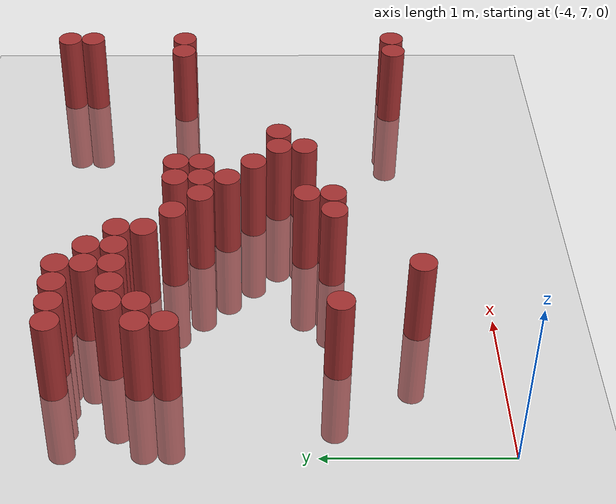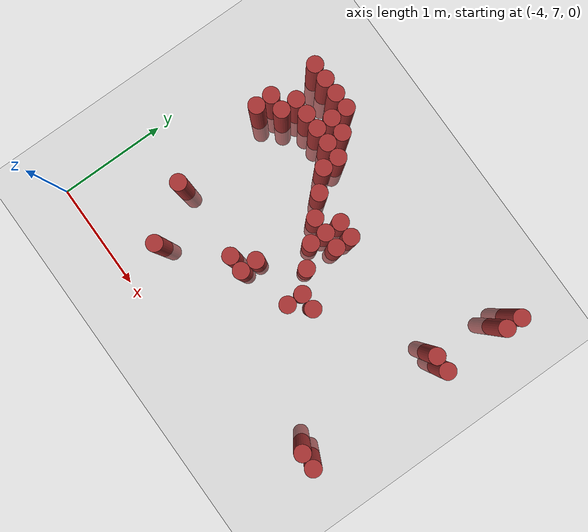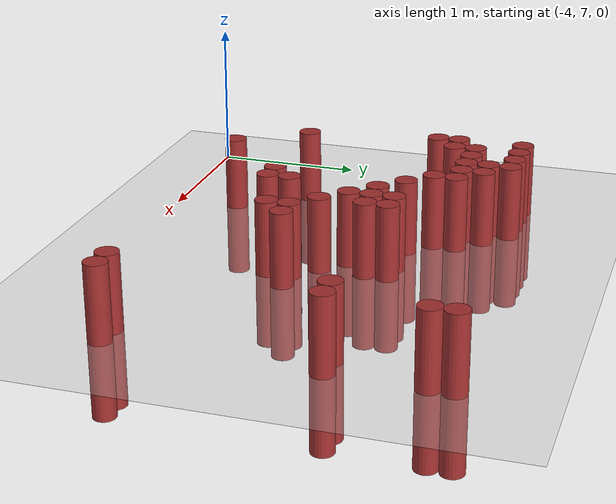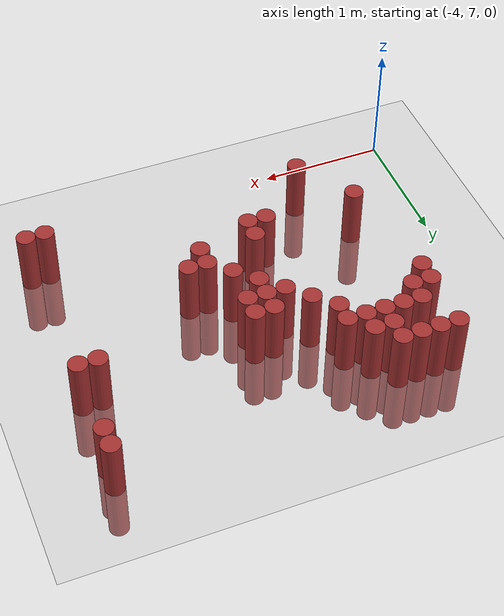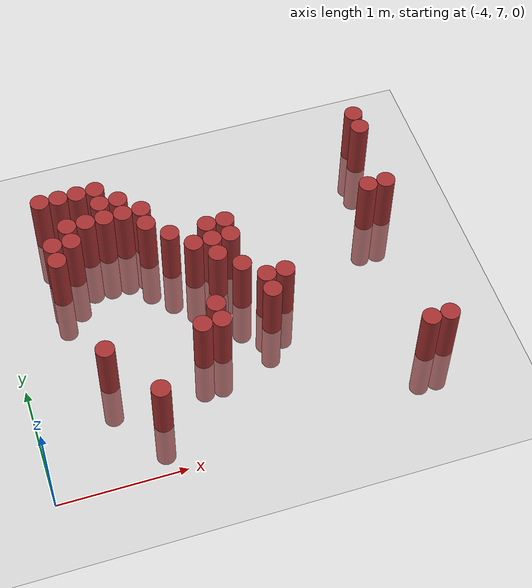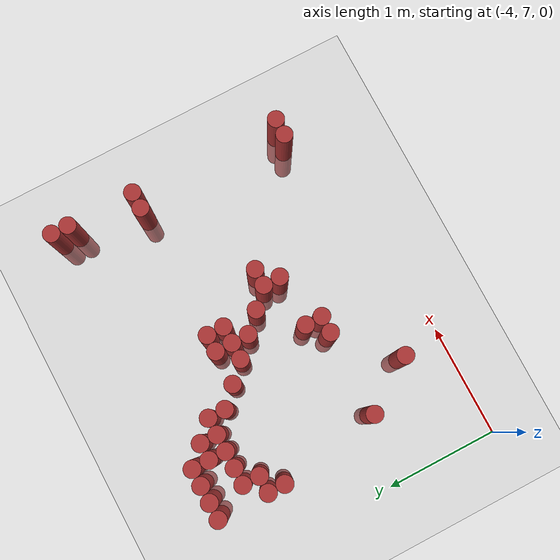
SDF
<sdf version="1.6">
 <world name="default">
  <model name="ground_plane">
   <static>1</static>
   <link name="link">
    <collision name="collision">
     <geometry><plane><normal>0 0 1</normal><size>100 100</size></plane></geometry>
     <surface><friction><ode><mu>100</mu><mu2>50</mu2></ode></friction></surface>
    </collision>
    <visual name="visual">
     <cast_shadows>0</cast_shadows>
     <geometry><plane><normal>0 0 1</normal><size>100 100</size></plane></geometry>
     <material>
      <script><uri>file://media/materials/scripts/gazebo.material</uri><name>Gazebo/Grey</name></script>
     </material>
    </visual>
   </link>
  </model>
  <model name="unit_cylinder_189">
   <static>1</static>
   <pose>-3.525000 8.775000 0.000000 0.000000 0.000000 0.000000</pose>
   <link name="link">
    <inertial>
     <mass>1</mass>
     <inertia><ixx>0.145833</ixx><ixy>0</ixy><ixz>0</ixz><iyy>0.145833</iyy><iyz>0</iyz><izz>0.125</izz></inertia>
    </inertial>
    <collision name="collision">
     <geometry><cylinder><radius>0.075000</radius><length>1</length></cylinder></geometry>
    </collision>
    <visual name="visual">
     <geometry><cylinder><radius>0.075000</radius><length>1</length></cylinder></geometry>
     <material>
      <ambient>0.648000 0.192000 0.192000 1</ambient>
      <diffuse>0.648000 0.192000 0.192000 1</diffuse>
     </material>
     <material>
      <script><name>Gazebo/Grey</name><uri>file://media/materials/scripts/gazebo.material</uri></script>
     </material>
    </visual>
    <sensor name="sensor_contact" type="contact"><contact><collision>collision</collision></contact></sensor>
   </link>
   <plugin filename="gz-sim-touchplugin-system" name="gz::sim::systems::TouchPlugin">
    <target>robot</target>
    <namespace>robot</namespace>
    <time>0.001</time>
    <enabled>true</enabled>
   </plugin>
  </model>
  <model name="unit_cylinder_190">
   <static>1</static>
   <pose>-3.525000 8.925000 0.000000 0.000000 0.000000 0.000000</pose>
   <link name="link">
    <inertial>
     <mass>1</mass>
     <inertia><ixx>0.145833</ixx><ixy>0</ixy><ixz>0</ixz><iyy>0.145833</iyy><iyz>0</iyz><izz>0.125</izz></inertia>
    </inertial>
    <collision name="collision">
     <geometry><cylinder><radius>0.075000</radius><length>1</length></cylinder></geometry>
    </collision>
    <visual name="visual">
     <geometry><cylinder><radius>0.075000</radius><length>1</length></cylinder></geometry>
     <material>
      <ambient>0.648000 0.192000 0.192000 1</ambient>
      <diffuse>0.648000 0.192000 0.192000 1</diffuse>
     </material>
     <material>
      <script><name>Gazebo/Grey</name><uri>file://media/materials/scripts/gazebo.material</uri></script>
     </material>
    </visual>
    <sensor name="sensor_contact" type="contact"><contact><collision>collision</collision></contact></sensor>
   </link>
   <plugin filename="gz-sim-touchplugin-system" name="gz::sim::systems::TouchPlugin">
    <target>robot</target>
    <namespace>robot</namespace>
    <time>0.001</time>
    <enabled>true</enabled>
   </plugin>
  </model>
  <model name="unit_cylinder_191">
   <static>1</static>
   <pose>-3.525000 9.375000 0.000000 0.000000 0.000000 0.000000</pose>
   <link name="link">
    <inertial>
     <mass>1</mass>
     <inertia><ixx>0.145833</ixx><ixy>0</ixy><ixz>0</ixz><iyy>0.145833</iyy><iyz>0</iyz><izz>0.125</izz></inertia>
    </inertial>
    <collision name="collision">
     <geometry><cylinder><radius>0.075000</radius><length>1</length></cylinder></geometry>
    </collision>
    <visual name="visual">
     <geometry><cylinder><radius>0.075000</radius><length>1</length></cylinder></geometry>
     <material>
      <ambient>0.648000 0.192000 0.192000 1</ambient>
      <diffuse>0.648000 0.192000 0.192000 1</diffuse>
     </material>
     <material>
      <script><name>Gazebo/Grey</name><uri>file://media/materials/scripts/gazebo.material</uri></script>
     </material>
    </visual>
    <sensor name="sensor_contact" type="contact"><contact><collision>collision</collision></contact></sensor>
   </link>
   <plugin filename="gz-sim-touchplugin-system" name="gz::sim::systems::TouchPlugin">
    <target>robot</target>
    <namespace>robot</namespace>
    <time>0.001</time>
    <enabled>true</enabled>
   </plugin>
  </model>
  <model name="unit_cylinder_198">
   <static>1</static>
   <pose>-3.375000 7.875000 0.000000 0.000000 0.000000 0.000000</pose>
   <link name="link">
    <inertial>
     <mass>1</mass>
     <inertia><ixx>0.145833</ixx><ixy>0</ixy><ixz>0</ixz><iyy>0.145833</iyy><iyz>0</iyz><izz>0.125</izz></inertia>
    </inertial>
    <collision name="collision">
     <geometry><cylinder><radius>0.075000</radius><length>1</length></cylinder></geometry>
    </collision>
    <visual name="visual">
     <geometry><cylinder><radius>0.075000</radius><length>1</length></cylinder></geometry>
     <material>
      <ambient>0.648000 0.192000 0.192000 1</ambient>
      <diffuse>0.648000 0.192000 0.192000 1</diffuse>
     </material>
     <material>
      <script><name>Gazebo/Grey</name><uri>file://media/materials/scripts/gazebo.material</uri></script>
     </material>
    </visual>
    <sensor name="sensor_contact" type="contact"><contact><collision>collision</collision></contact></sensor>
   </link>
   <plugin filename="gz-sim-touchplugin-system" name="gz::sim::systems::TouchPlugin">
    <target>robot</target>
    <namespace>robot</namespace>
    <time>0.001</time>
    <enabled>true</enabled>
   </plugin>
  </model>
  <model name="unit_cylinder_199">
   <static>1</static>
   <pose>-3.375000 8.925000 0.000000 0.000000 0.000000 0.000000</pose>
   <link name="link">
    <inertial>
     <mass>1</mass>
     <inertia><ixx>0.145833</ixx><ixy>0</ixy><ixz>0</ixz><iyy>0.145833</iyy><iyz>0</iyz><izz>0.125</izz></inertia>
    </inertial>
    <collision name="collision">
     <geometry><cylinder><radius>0.075000</radius><length>1</length></cylinder></geometry>
    </collision>
    <visual name="visual">
     <geometry><cylinder><radius>0.075000</radius><length>1</length></cylinder></geometry>
     <material>
      <ambient>0.648000 0.192000 0.192000 1</ambient>
      <diffuse>0.648000 0.192000 0.192000 1</diffuse>
     </material>
     <material>
      <script><name>Gazebo/Grey</name><uri>file://media/materials/scripts/gazebo.material</uri></script>
     </material>
    </visual>
    <sensor name="sensor_contact" type="contact"><contact><collision>collision</collision></contact></sensor>
   </link>
   <plugin filename="gz-sim-touchplugin-system" name="gz::sim::systems::TouchPlugin">
    <target>robot</target>
    <namespace>robot</namespace>
    <time>0.001</time>
    <enabled>true</enabled>
   </plugin>
  </model>
  <model name="unit_cylinder_200">
   <static>1</static>
   <pose>-3.375000 9.075000 0.000000 0.000000 0.000000 0.000000</pose>
   <link name="link">
    <inertial>
     <mass>1</mass>
     <inertia><ixx>0.145833</ixx><ixy>0</ixy><ixz>0</ixz><iyy>0.145833</iyy><iyz>0</iyz><izz>0.125</izz></inertia>
    </inertial>
    <collision name="collision">
     <geometry><cylinder><radius>0.075000</radius><length>1</length></cylinder></geometry>
    </collision>
    <visual name="visual">
     <geometry><cylinder><radius>0.075000</radius><length>1</length></cylinder></geometry>
     <material>
      <ambient>0.648000 0.192000 0.192000 1</ambient>
      <diffuse>0.648000 0.192000 0.192000 1</diffuse>
     </material>
     <material>
      <script><name>Gazebo/Grey</name><uri>file://media/materials/scripts/gazebo.material</uri></script>
     </material>
    </visual>
    <sensor name="sensor_contact" type="contact"><contact><collision>collision</collision></contact></sensor>
   </link>
   <plugin filename="gz-sim-touchplugin-system" name="gz::sim::systems::TouchPlugin">
    <target>robot</target>
    <namespace>robot</namespace>
    <time>0.001</time>
    <enabled>true</enabled>
   </plugin>
  </model>
  <model name="unit_cylinder_201">
   <static>1</static>
   <pose>-3.375000 9.375000 0.000000 0.000000 0.000000 0.000000</pose>
   <link name="link">
    <inertial>
     <mass>1</mass>
     <inertia><ixx>0.145833</ixx><ixy>0</ixy><ixz>0</ixz><iyy>0.145833</iyy><iyz>0</iyz><izz>0.125</izz></inertia>
    </inertial>
    <collision name="collision">
     <geometry><cylinder><radius>0.075000</radius><length>1</length></cylinder></geometry>
    </collision>
    <visual name="visual">
     <geometry><cylinder><radius>0.075000</radius><length>1</length></cylinder></geometry>
     <material>
      <ambient>0.648000 0.192000 0.192000 1</ambient>
      <diffuse>0.648000 0.192000 0.192000 1</diffuse>
     </material>
     <material>
      <script><name>Gazebo/Grey</name><uri>file://media/materials/scripts/gazebo.material</uri></script>
     </material>
    </visual>
    <sensor name="sensor_contact" type="contact"><contact><collision>collision</collision></contact></sensor>
   </link>
   <plugin filename="gz-sim-touchplugin-system" name="gz::sim::systems::TouchPlugin">
    <target>robot</target>
    <namespace>robot</namespace>
    <time>0.001</time>
    <enabled>true</enabled>
   </plugin>
  </model>
  <model name="unit_cylinder_208">
   <static>1</static>
   <pose>-3.225000 9.075000 0.000000 0.000000 0.000000 0.000000</pose>
   <link name="link">
    <inertial>
     <mass>1</mass>
     <inertia><ixx>0.145833</ixx><ixy>0</ixy><ixz>0</ixz><iyy>0.145833</iyy><iyz>0</iyz><izz>0.125</izz></inertia>
    </inertial>
    <collision name="collision">
     <geometry><cylinder><radius>0.075000</radius><length>1</length></cylinder></geometry>
    </collision>
    <visual name="visual">
     <geometry><cylinder><radius>0.075000</radius><length>1</length></cylinder></geometry>
     <material>
      <ambient>0.648000 0.192000 0.192000 1</ambient>
      <diffuse>0.648000 0.192000 0.192000 1</diffuse>
     </material>
     <material>
      <script><name>Gazebo/Grey</name><uri>file://media/materials/scripts/gazebo.material</uri></script>
     </material>
    </visual>
    <sensor name="sensor_contact" type="contact"><contact><collision>collision</collision></contact></sensor>
   </link>
   <plugin filename="gz-sim-touchplugin-system" name="gz::sim::systems::TouchPlugin">
    <target>robot</target>
    <namespace>robot</namespace>
    <time>0.001</time>
    <enabled>true</enabled>
   </plugin>
  </model>
  <model name="unit_cylinder_209">
   <static>1</static>
   <pose>-3.225000 9.375000 0.000000 0.000000 0.000000 0.000000</pose>
   <link name="link">
    <inertial>
     <mass>1</mass>
     <inertia><ixx>0.145833</ixx><ixy>0</ixy><ixz>0</ixz><iyy>0.145833</iyy><iyz>0</iyz><izz>0.125</izz></inertia>
    </inertial>
    <collision name="collision">
     <geometry><cylinder><radius>0.075000</radius><length>1</length></cylinder></geometry>
    </collision>
    <visual name="visual">
     <geometry><cylinder><radius>0.075000</radius><length>1</length></cylinder></geometry>
     <material>
      <ambient>0.648000 0.192000 0.192000 1</ambient>
      <diffuse>0.648000 0.192000 0.192000 1</diffuse>
     </material>
     <material>
      <script><name>Gazebo/Grey</name><uri>file://media/materials/scripts/gazebo.material</uri></script>
     </material>
    </visual>
    <sensor name="sensor_contact" type="contact"><contact><collision>collision</collision></contact></sensor>
   </link>
   <plugin filename="gz-sim-touchplugin-system" name="gz::sim::systems::TouchPlugin">
    <target>robot</target>
    <namespace>robot</namespace>
    <time>0.001</time>
    <enabled>true</enabled>
   </plugin>
  </model>
  <model name="unit_cylinder_213">
   <static>1</static>
   <pose>-3.075000 7.425000 0.000000 0.000000 0.000000 0.000000</pose>
   <link name="link">
    <inertial>
     <mass>1</mass>
     <inertia><ixx>0.145833</ixx><ixy>0</ixy><ixz>0</ixz><iyy>0.145833</iyy><iyz>0</iyz><izz>0.125</izz></inertia>
    </inertial>
    <collision name="collision">
     <geometry><cylinder><radius>0.075000</radius><length>1</length></cylinder></geometry>
    </collision>
    <visual name="visual">
     <geometry><cylinder><radius>0.075000</radius><length>1</length></cylinder></geometry>
     <material>
      <ambient>0.648000 0.192000 0.192000 1</ambient>
      <diffuse>0.648000 0.192000 0.192000 1</diffuse>
     </material>
     <material>
      <script><name>Gazebo/Grey</name><uri>file://media/materials/scripts/gazebo.material</uri></script>
     </material>
    </visual>
    <sensor name="sensor_contact" type="contact"><contact><collision>collision</collision></contact></sensor>
   </link>
   <plugin filename="gz-sim-touchplugin-system" name="gz::sim::systems::TouchPlugin">
    <target>robot</target>
    <namespace>robot</namespace>
    <time>0.001</time>
    <enabled>true</enabled>
   </plugin>
  </model>
  <model name="unit_cylinder_214">
   <static>1</static>
   <pose>-3.075000 9.075000 0.000000 0.000000 0.000000 0.000000</pose>
   <link name="link">
    <inertial>
     <mass>1</mass>
     <inertia><ixx>0.145833</ixx><ixy>0</ixy><ixz>0</ixz><iyy>0.145833</iyy><iyz>0</iyz><izz>0.125</izz></inertia>
    </inertial>
    <collision name="collision">
     <geometry><cylinder><radius>0.075000</radius><length>1</length></cylinder></geometry>
    </collision>
    <visual name="visual">
     <geometry><cylinder><radius>0.075000</radius><length>1</length></cylinder></geometry>
     <material>
      <ambient>0.648000 0.192000 0.192000 1</ambient>
      <diffuse>0.648000 0.192000 0.192000 1</diffuse>
     </material>
     <material>
      <script><name>Gazebo/Grey</name><uri>file://media/materials/scripts/gazebo.material</uri></script>
     </material>
    </visual>
    <sensor name="sensor_contact" type="contact"><contact><collision>collision</collision></contact></sensor>
   </link>
   <plugin filename="gz-sim-touchplugin-system" name="gz::sim::systems::TouchPlugin">
    <target>robot</target>
    <namespace>robot</namespace>
    <time>0.001</time>
    <enabled>true</enabled>
   </plugin>
  </model>
  <model name="unit_cylinder_215">
   <static>1</static>
   <pose>-3.075000 9.225000 0.000000 0.000000 0.000000 0.000000</pose>
   <link name="link">
    <inertial>
     <mass>1</mass>
     <inertia><ixx>0.145833</ixx><ixy>0</ixy><ixz>0</ixz><iyy>0.145833</iyy><iyz>0</iyz><izz>0.125</izz></inertia>
    </inertial>
    <collision name="collision">
     <geometry><cylinder><radius>0.075000</radius><length>1</length></cylinder></geometry>
    </collision>
    <visual name="visual">
     <geometry><cylinder><radius>0.075000</radius><length>1</length></cylinder></geometry>
     <material>
      <ambient>0.648000 0.192000 0.192000 1</ambient>
      <diffuse>0.648000 0.192000 0.192000 1</diffuse>
     </material>
     <material>
      <script><name>Gazebo/Grey</name><uri>file://media/materials/scripts/gazebo.material</uri></script>
     </material>
    </visual>
    <sensor name="sensor_contact" type="contact"><contact><collision>collision</collision></contact></sensor>
   </link>
   <plugin filename="gz-sim-touchplugin-system" name="gz::sim::systems::TouchPlugin">
    <target>robot</target>
    <namespace>robot</namespace>
    <time>0.001</time>
    <enabled>true</enabled>
   </plugin>
  </model>
  <model name="unit_cylinder_216">
   <static>1</static>
   <pose>-3.075000 9.375000 0.000000 0.000000 0.000000 0.000000</pose>
   <link name="link">
    <inertial>
     <mass>1</mass>
     <inertia><ixx>0.145833</ixx><ixy>0</ixy><ixz>0</ixz><iyy>0.145833</iyy><iyz>0</iyz><izz>0.125</izz></inertia>
    </inertial>
    <collision name="collision">
     <geometry><cylinder><radius>0.075000</radius><length>1</length></cylinder></geometry>
    </collision>
    <visual name="visual">
     <geometry><cylinder><radius>0.075000</radius><length>1</length></cylinder></geometry>
     <material>
      <ambient>0.648000 0.192000 0.192000 1</ambient>
      <diffuse>0.648000 0.192000 0.192000 1</diffuse>
     </material>
     <material>
      <script><name>Gazebo/Grey</name><uri>file://media/materials/scripts/gazebo.material</uri></script>
     </material>
    </visual>
    <sensor name="sensor_contact" type="contact"><contact><collision>collision</collision></contact></sensor>
   </link>
   <plugin filename="gz-sim-touchplugin-system" name="gz::sim::systems::TouchPlugin">
    <target>robot</target>
    <namespace>robot</namespace>
    <time>0.001</time>
    <enabled>true</enabled>
   </plugin>
  </model>
  <model name="unit_cylinder_217">
   <static>1</static>
   <pose>-2.925000 9.075000 0.000000 0.000000 0.000000 0.000000</pose>
   <link name="link">
    <inertial>
     <mass>1</mass>
     <inertia><ixx>0.145833</ixx><ixy>0</ixy><ixz>0</ixz><iyy>0.145833</iyy><iyz>0</iyz><izz>0.125</izz></inertia>
    </inertial>
    <collision name="collision">
     <geometry><cylinder><radius>0.075000</radius><length>1</length></cylinder></geometry>
    </collision>
    <visual name="visual">
     <geometry><cylinder><radius>0.075000</radius><length>1</length></cylinder></geometry>
     <material>
      <ambient>0.648000 0.192000 0.192000 1</ambient>
      <diffuse>0.648000 0.192000 0.192000 1</diffuse>
     </material>
     <material>
      <script><name>Gazebo/Grey</name><uri>file://media/materials/scripts/gazebo.material</uri></script>
     </material>
    </visual>
    <sensor name="sensor_contact" type="contact"><contact><collision>collision</collision></contact></sensor>
   </link>
   <plugin filename="gz-sim-touchplugin-system" name="gz::sim::systems::TouchPlugin">
    <target>robot</target>
    <namespace>robot</namespace>
    <time>0.001</time>
    <enabled>true</enabled>
   </plugin>
  </model>
  <model name="unit_cylinder_218">
   <static>1</static>
   <pose>-2.925000 9.225000 0.000000 0.000000 0.000000 0.000000</pose>
   <link name="link">
    <inertial>
     <mass>1</mass>
     <inertia><ixx>0.145833</ixx><ixy>0</ixy><ixz>0</ixz><iyy>0.145833</iyy><iyz>0</iyz><izz>0.125</izz></inertia>
    </inertial>
    <collision name="collision">
     <geometry><cylinder><radius>0.075000</radius><length>1</length></cylinder></geometry>
    </collision>
    <visual name="visual">
     <geometry><cylinder><radius>0.075000</radius><length>1</length></cylinder></geometry>
     <material>
      <ambient>0.648000 0.192000 0.192000 1</ambient>
      <diffuse>0.648000 0.192000 0.192000 1</diffuse>
     </material>
     <material>
      <script><name>Gazebo/Grey</name><uri>file://media/materials/scripts/gazebo.material</uri></script>
     </material>
    </visual>
    <sensor name="sensor_contact" type="contact"><contact><collision>collision</collision></contact></sensor>
   </link>
   <plugin filename="gz-sim-touchplugin-system" name="gz::sim::systems::TouchPlugin">
    <target>robot</target>
    <namespace>robot</namespace>
    <time>0.001</time>
    <enabled>true</enabled>
   </plugin>
  </model>
  <model name="unit_cylinder_220">
   <static>1</static>
   <pose>-2.775000 8.925000 0.000000 0.000000 0.000000 0.000000</pose>
   <link name="link">
    <inertial>
     <mass>1</mass>
     <inertia><ixx>0.145833</ixx><ixy>0</ixy><ixz>0</ixz><iyy>0.145833</iyy><iyz>0</iyz><izz>0.125</izz></inertia>
    </inertial>
    <collision name="collision">
     <geometry><cylinder><radius>0.075000</radius><length>1</length></cylinder></geometry>
    </collision>
    <visual name="visual">
     <geometry><cylinder><radius>0.075000</radius><length>1</length></cylinder></geometry>
     <material>
      <ambient>0.648000 0.192000 0.192000 1</ambient>
      <diffuse>0.648000 0.192000 0.192000 1</diffuse>
     </material>
     <material>
      <script><name>Gazebo/Grey</name><uri>file://media/materials/scripts/gazebo.material</uri></script>
     </material>
    </visual>
    <sensor name="sensor_contact" type="contact"><contact><collision>collision</collision></contact></sensor>
   </link>
   <plugin filename="gz-sim-touchplugin-system" name="gz::sim::systems::TouchPlugin">
    <target>robot</target>
    <namespace>robot</namespace>
    <time>0.001</time>
    <enabled>true</enabled>
   </plugin>
  </model>
  <model name="unit_cylinder_221">
   <static>1</static>
   <pose>-2.775000 9.075000 0.000000 0.000000 0.000000 0.000000</pose>
   <link name="link">
    <inertial>
     <mass>1</mass>
     <inertia><ixx>0.145833</ixx><ixy>0</ixy><ixz>0</ixz><iyy>0.145833</iyy><iyz>0</iyz><izz>0.125</izz></inertia>
    </inertial>
    <collision name="collision">
     <geometry><cylinder><radius>0.075000</radius><length>1</length></cylinder></geometry>
    </collision>
    <visual name="visual">
     <geometry><cylinder><radius>0.075000</radius><length>1</length></cylinder></geometry>
     <material>
      <ambient>0.648000 0.192000 0.192000 1</ambient>
      <diffuse>0.648000 0.192000 0.192000 1</diffuse>
     </material>
     <material>
      <script><name>Gazebo/Grey</name><uri>file://media/materials/scripts/gazebo.material</uri></script>
     </material>
    </visual>
    <sensor name="sensor_contact" type="contact"><contact><collision>collision</collision></contact></sensor>
   </link>
   <plugin filename="gz-sim-touchplugin-system" name="gz::sim::systems::TouchPlugin">
    <target>robot</target>
    <namespace>robot</namespace>
    <time>0.001</time>
    <enabled>true</enabled>
   </plugin>
  </model>
  <model name="unit_cylinder_224">
   <static>1</static>
   <pose>-2.625000 7.875000 0.000000 0.000000 0.000000 0.000000</pose>
   <link name="link">
    <inertial>
     <mass>1</mass>
     <inertia><ixx>0.145833</ixx><ixy>0</ixy><ixz>0</ixz><iyy>0.145833</iyy><iyz>0</iyz><izz>0.125</izz></inertia>
    </inertial>
    <collision name="collision">
     <geometry><cylinder><radius>0.075000</radius><length>1</length></cylinder></geometry>
    </collision>
    <visual name="visual">
     <geometry><cylinder><radius>0.075000</radius><length>1</length></cylinder></geometry>
     <material>
      <ambient>0.648000 0.192000 0.192000 1</ambient>
      <diffuse>0.648000 0.192000 0.192000 1</diffuse>
     </material>
     <material>
      <script><name>Gazebo/Grey</name><uri>file://media/materials/scripts/gazebo.material</uri></script>
     </material>
    </visual>
    <sensor name="sensor_contact" type="contact"><contact><collision>collision</collision></contact></sensor>
   </link>
   <plugin filename="gz-sim-touchplugin-system" name="gz::sim::systems::TouchPlugin">
    <target>robot</target>
    <namespace>robot</namespace>
    <time>0.001</time>
    <enabled>true</enabled>
   </plugin>
  </model>
  <model name="unit_cylinder_225">
   <static>1</static>
   <pose>-2.625000 8.775000 0.000000 0.000000 0.000000 0.000000</pose>
   <link name="link">
    <inertial>
     <mass>1</mass>
     <inertia><ixx>0.145833</ixx><ixy>0</ixy><ixz>0</ixz><iyy>0.145833</iyy><iyz>0</iyz><izz>0.125</izz></inertia>
    </inertial>
    <collision name="collision">
     <geometry><cylinder><radius>0.075000</radius><length>1</length></cylinder></geometry>
    </collision>
    <visual name="visual">
     <geometry><cylinder><radius>0.075000</radius><length>1</length></cylinder></geometry>
     <material>
      <ambient>0.648000 0.192000 0.192000 1</ambient>
      <diffuse>0.648000 0.192000 0.192000 1</diffuse>
     </material>
     <material>
      <script><name>Gazebo/Grey</name><uri>file://media/materials/scripts/gazebo.material</uri></script>
     </material>
    </visual>
    <sensor name="sensor_contact" type="contact"><contact><collision>collision</collision></contact></sensor>
   </link>
   <plugin filename="gz-sim-touchplugin-system" name="gz::sim::systems::TouchPlugin">
    <target>robot</target>
    <namespace>robot</namespace>
    <time>0.001</time>
    <enabled>true</enabled>
   </plugin>
  </model>
  <model name="unit_cylinder_227">
   <static>1</static>
   <pose>-2.475000 7.875000 0.000000 0.000000 0.000000 0.000000</pose>
   <link name="link">
    <inertial>
     <mass>1</mass>
     <inertia><ixx>0.145833</ixx><ixy>0</ixy><ixz>0</ixz><iyy>0.145833</iyy><iyz>0</iyz><izz>0.125</izz></inertia>
    </inertial>
    <collision name="collision">
     <geometry><cylinder><radius>0.075000</radius><length>1</length></cylinder></geometry>
    </collision>
    <visual name="visual">
     <geometry><cylinder><radius>0.075000</radius><length>1</length></cylinder></geometry>
     <material>
      <ambient>0.648000 0.192000 0.192000 1</ambient>
      <diffuse>0.648000 0.192000 0.192000 1</diffuse>
     </material>
     <material>
      <script><name>Gazebo/Grey</name><uri>file://media/materials/scripts/gazebo.material</uri></script>
     </material>
    </visual>
    <sensor name="sensor_contact" type="contact"><contact><collision>collision</collision></contact></sensor>
   </link>
   <plugin filename="gz-sim-touchplugin-system" name="gz::sim::systems::TouchPlugin">
    <target>robot</target>
    <namespace>robot</namespace>
    <time>0.001</time>
    <enabled>true</enabled>
   </plugin>
  </model>
  <model name="unit_cylinder_228">
   <static>1</static>
   <pose>-2.475000 8.025000 0.000000 0.000000 0.000000 0.000000</pose>
   <link name="link">
    <inertial>
     <mass>1</mass>
     <inertia><ixx>0.145833</ixx><ixy>0</ixy><ixz>0</ixz><iyy>0.145833</iyy><iyz>0</iyz><izz>0.125</izz></inertia>
    </inertial>
    <collision name="collision">
     <geometry><cylinder><radius>0.075000</radius><length>1</length></cylinder></geometry>
    </collision>
    <visual name="visual">
     <geometry><cylinder><radius>0.075000</radius><length>1</length></cylinder></geometry>
     <material>
      <ambient>0.648000 0.192000 0.192000 1</ambient>
      <diffuse>0.648000 0.192000 0.192000 1</diffuse>
     </material>
     <material>
      <script><name>Gazebo/Grey</name><uri>file://media/materials/scripts/gazebo.material</uri></script>
     </material>
    </visual>
    <sensor name="sensor_contact" type="contact"><contact><collision>collision</collision></contact></sensor>
   </link>
   <plugin filename="gz-sim-touchplugin-system" name="gz::sim::systems::TouchPlugin">
    <target>robot</target>
    <namespace>robot</namespace>
    <time>0.001</time>
    <enabled>true</enabled>
   </plugin>
  </model>
  <model name="unit_cylinder_229">
   <static>1</static>
   <pose>-2.475000 8.625000 0.000000 0.000000 0.000000 0.000000</pose>
   <link name="link">
    <inertial>
     <mass>1</mass>
     <inertia><ixx>0.145833</ixx><ixy>0</ixy><ixz>0</ixz><iyy>0.145833</iyy><iyz>0</iyz><izz>0.125</izz></inertia>
    </inertial>
    <collision name="collision">
     <geometry><cylinder><radius>0.075000</radius><length>1</length></cylinder></geometry>
    </collision>
    <visual name="visual">
     <geometry><cylinder><radius>0.075000</radius><length>1</length></cylinder></geometry>
     <material>
      <ambient>0.648000 0.192000 0.192000 1</ambient>
      <diffuse>0.648000 0.192000 0.192000 1</diffuse>
     </material>
     <material>
      <script><name>Gazebo/Grey</name><uri>file://media/materials/scripts/gazebo.material</uri></script>
     </material>
    </visual>
    <sensor name="sensor_contact" type="contact"><contact><collision>collision</collision></contact></sensor>
   </link>
   <plugin filename="gz-sim-touchplugin-system" name="gz::sim::systems::TouchPlugin">
    <target>robot</target>
    <namespace>robot</namespace>
    <time>0.001</time>
    <enabled>true</enabled>
   </plugin>
  </model>
  <model name="unit_cylinder_230">
   <static>1</static>
   <pose>-2.325000 8.475000 0.000000 0.000000 0.000000 0.000000</pose>
   <link name="link">
    <inertial>
     <mass>1</mass>
     <inertia><ixx>0.145833</ixx><ixy>0</ixy><ixz>0</ixz><iyy>0.145833</iyy><iyz>0</iyz><izz>0.125</izz></inertia>
    </inertial>
    <collision name="collision">
     <geometry><cylinder><radius>0.075000</radius><length>1</length></cylinder></geometry>
    </collision>
    <visual name="visual">
     <geometry><cylinder><radius>0.075000</radius><length>1</length></cylinder></geometry>
     <material>
      <ambient>0.648000 0.192000 0.192000 1</ambient>
      <diffuse>0.648000 0.192000 0.192000 1</diffuse>
     </material>
     <material>
      <script><name>Gazebo/Grey</name><uri>file://media/materials/scripts/gazebo.material</uri></script>
     </material>
    </visual>
    <sensor name="sensor_contact" type="contact"><contact><collision>collision</collision></contact></sensor>
   </link>
   <plugin filename="gz-sim-touchplugin-system" name="gz::sim::systems::TouchPlugin">
    <target>robot</target>
    <namespace>robot</namespace>
    <time>0.001</time>
    <enabled>true</enabled>
   </plugin>
  </model>
  <model name="unit_cylinder_231">
   <static>1</static>
   <pose>-2.325000 8.625000 0.000000 0.000000 0.000000 0.000000</pose>
   <link name="link">
    <inertial>
     <mass>1</mass>
     <inertia><ixx>0.145833</ixx><ixy>0</ixy><ixz>0</ixz><iyy>0.145833</iyy><iyz>0</iyz><izz>0.125</izz></inertia>
    </inertial>
    <collision name="collision">
     <geometry><cylinder><radius>0.075000</radius><length>1</length></cylinder></geometry>
    </collision>
    <visual name="visual">
     <geometry><cylinder><radius>0.075000</radius><length>1</length></cylinder></geometry>
     <material>
      <ambient>0.648000 0.192000 0.192000 1</ambient>
      <diffuse>0.648000 0.192000 0.192000 1</diffuse>
     </material>
     <material>
      <script><name>Gazebo/Grey</name><uri>file://media/materials/scripts/gazebo.material</uri></script>
     </material>
    </visual>
    <sensor name="sensor_contact" type="contact"><contact><collision>collision</collision></contact></sensor>
   </link>
   <plugin filename="gz-sim-touchplugin-system" name="gz::sim::systems::TouchPlugin">
    <target>robot</target>
    <namespace>robot</namespace>
    <time>0.001</time>
    <enabled>true</enabled>
   </plugin>
  </model>
  <model name="unit_cylinder_232">
   <static>1</static>
   <pose>-2.325000 8.775000 0.000000 0.000000 0.000000 0.000000</pose>
   <link name="link">
    <inertial>
     <mass>1</mass>
     <inertia><ixx>0.145833</ixx><ixy>0</ixy><ixz>0</ixz><iyy>0.145833</iyy><iyz>0</iyz><izz>0.125</izz></inertia>
    </inertial>
    <collision name="collision">
     <geometry><cylinder><radius>0.075000</radius><length>1</length></cylinder></geometry>
    </collision>
    <visual name="visual">
     <geometry><cylinder><radius>0.075000</radius><length>1</length></cylinder></geometry>
     <material>
      <ambient>0.648000 0.192000 0.192000 1</ambient>
      <diffuse>0.648000 0.192000 0.192000 1</diffuse>
     </material>
     <material>
      <script><name>Gazebo/Grey</name><uri>file://media/materials/scripts/gazebo.material</uri></script>
     </material>
    </visual>
    <sensor name="sensor_contact" type="contact"><contact><collision>collision</collision></contact></sensor>
   </link>
   <plugin filename="gz-sim-touchplugin-system" name="gz::sim::systems::TouchPlugin">
    <target>robot</target>
    <namespace>robot</namespace>
    <time>0.001</time>
    <enabled>true</enabled>
   </plugin>
  </model>
  <model name="unit_cylinder_233">
   <static>1</static>
   <pose>-2.175000 8.325000 0.000000 0.000000 0.000000 0.000000</pose>
   <link name="link">
    <inertial>
     <mass>1</mass>
     <inertia><ixx>0.145833</ixx><ixy>0</ixy><ixz>0</ixz><iyy>0.145833</iyy><iyz>0</iyz><izz>0.125</izz></inertia>
    </inertial>
    <collision name="collision">
     <geometry><cylinder><radius>0.075000</radius><length>1</length></cylinder></geometry>
    </collision>
    <visual name="visual">
     <geometry><cylinder><radius>0.075000</radius><length>1</length></cylinder></geometry>
     <material>
      <ambient>0.648000 0.192000 0.192000 1</ambient>
      <diffuse>0.648000 0.192000 0.192000 1</diffuse>
     </material>
     <material>
      <script><name>Gazebo/Grey</name><uri>file://media/materials/scripts/gazebo.material</uri></script>
     </material>
    </visual>
    <sensor name="sensor_contact" type="contact"><contact><collision>collision</collision></contact></sensor>
   </link>
   <plugin filename="gz-sim-touchplugin-system" name="gz::sim::systems::TouchPlugin">
    <target>robot</target>
    <namespace>robot</namespace>
    <time>0.001</time>
    <enabled>true</enabled>
   </plugin>
  </model>
  <model name="unit_cylinder_234">
   <static>1</static>
   <pose>-2.175000 8.625000 0.000000 0.000000 0.000000 0.000000</pose>
   <link name="link">
    <inertial>
     <mass>1</mass>
     <inertia><ixx>0.145833</ixx><ixy>0</ixy><ixz>0</ixz><iyy>0.145833</iyy><iyz>0</iyz><izz>0.125</izz></inertia>
    </inertial>
    <collision name="collision">
     <geometry><cylinder><radius>0.075000</radius><length>1</length></cylinder></geometry>
    </collision>
    <visual name="visual">
     <geometry><cylinder><radius>0.075000</radius><length>1</length></cylinder></geometry>
     <material>
      <ambient>0.648000 0.192000 0.192000 1</ambient>
      <diffuse>0.648000 0.192000 0.192000 1</diffuse>
     </material>
     <material>
      <script><name>Gazebo/Grey</name><uri>file://media/materials/scripts/gazebo.material</uri></script>
     </material>
    </visual>
    <sensor name="sensor_contact" type="contact"><contact><collision>collision</collision></contact></sensor>
   </link>
   <plugin filename="gz-sim-touchplugin-system" name="gz::sim::systems::TouchPlugin">
    <target>robot</target>
    <namespace>robot</namespace>
    <time>0.001</time>
    <enabled>true</enabled>
   </plugin>
  </model>
  <model name="unit_cylinder_235">
   <static>1</static>
   <pose>-2.175000 8.775000 0.000000 0.000000 0.000000 0.000000</pose>
   <link name="link">
    <inertial>
     <mass>1</mass>
     <inertia><ixx>0.145833</ixx><ixy>0</ixy><ixz>0</ixz><iyy>0.145833</iyy><iyz>0</iyz><izz>0.125</izz></inertia>
    </inertial>
    <collision name="collision">
     <geometry><cylinder><radius>0.075000</radius><length>1</length></cylinder></geometry>
    </collision>
    <visual name="visual">
     <geometry><cylinder><radius>0.075000</radius><length>1</length></cylinder></geometry>
     <material>
      <ambient>0.648000 0.192000 0.192000 1</ambient>
      <diffuse>0.648000 0.192000 0.192000 1</diffuse>
     </material>
     <material>
      <script><name>Gazebo/Grey</name><uri>file://media/materials/scripts/gazebo.material</uri></script>
     </material>
    </visual>
    <sensor name="sensor_contact" type="contact"><contact><collision>collision</collision></contact></sensor>
   </link>
   <plugin filename="gz-sim-touchplugin-system" name="gz::sim::systems::TouchPlugin">
    <target>robot</target>
    <namespace>robot</namespace>
    <time>0.001</time>
    <enabled>true</enabled>
   </plugin>
  </model>
  <model name="unit_cylinder_236">
   <static>1</static>
   <pose>-2.025000 8.025000 0.000000 0.000000 0.000000 0.000000</pose>
   <link name="link">
    <inertial>
     <mass>1</mass>
     <inertia><ixx>0.145833</ixx><ixy>0</ixy><ixz>0</ixz><iyy>0.145833</iyy><iyz>0</iyz><izz>0.125</izz></inertia>
    </inertial>
    <collision name="collision">
     <geometry><cylinder><radius>0.075000</radius><length>1</length></cylinder></geometry>
    </collision>
    <visual name="visual">
     <geometry><cylinder><radius>0.075000</radius><length>1</length></cylinder></geometry>
     <material>
      <ambient>0.648000 0.192000 0.192000 1</ambient>
      <diffuse>0.648000 0.192000 0.192000 1</diffuse>
     </material>
     <material>
      <script><name>Gazebo/Grey</name><uri>file://media/materials/scripts/gazebo.material</uri></script>
     </material>
    </visual>
    <sensor name="sensor_contact" type="contact"><contact><collision>collision</collision></contact></sensor>
   </link>
   <plugin filename="gz-sim-touchplugin-system" name="gz::sim::systems::TouchPlugin">
    <target>robot</target>
    <namespace>robot</namespace>
    <time>0.001</time>
    <enabled>true</enabled>
   </plugin>
  </model>
  <model name="unit_cylinder_237">
   <static>1</static>
   <pose>-2.025000 8.175000 0.000000 0.000000 0.000000 0.000000</pose>
   <link name="link">
    <inertial>
     <mass>1</mass>
     <inertia><ixx>0.145833</ixx><ixy>0</ixy><ixz>0</ixz><iyy>0.145833</iyy><iyz>0</iyz><izz>0.125</izz></inertia>
    </inertial>
    <collision name="collision">
     <geometry><cylinder><radius>0.075000</radius><length>1</length></cylinder></geometry>
    </collision>
    <visual name="visual">
     <geometry><cylinder><radius>0.075000</radius><length>1</length></cylinder></geometry>
     <material>
      <ambient>0.648000 0.192000 0.192000 1</ambient>
      <diffuse>0.648000 0.192000 0.192000 1</diffuse>
     </material>
     <material>
      <script><name>Gazebo/Grey</name><uri>file://media/materials/scripts/gazebo.material</uri></script>
     </material>
    </visual>
    <sensor name="sensor_contact" type="contact"><contact><collision>collision</collision></contact></sensor>
   </link>
   <plugin filename="gz-sim-touchplugin-system" name="gz::sim::systems::TouchPlugin">
    <target>robot</target>
    <namespace>robot</namespace>
    <time>0.001</time>
    <enabled>true</enabled>
   </plugin>
  </model>
  <model name="unit_cylinder_238">
   <static>1</static>
   <pose>-1.875000 8.175000 0.000000 0.000000 0.000000 0.000000</pose>
   <link name="link">
    <inertial>
     <mass>1</mass>
     <inertia><ixx>0.145833</ixx><ixy>0</ixy><ixz>0</ixz><iyy>0.145833</iyy><iyz>0</iyz><izz>0.125</izz></inertia>
    </inertial>
    <collision name="collision">
     <geometry><cylinder><radius>0.075000</radius><length>1</length></cylinder></geometry>
    </collision>
    <visual name="visual">
     <geometry><cylinder><radius>0.075000</radius><length>1</length></cylinder></geometry>
     <material>
      <ambient>0.648000 0.192000 0.192000 1</ambient>
      <diffuse>0.648000 0.192000 0.192000 1</diffuse>
     </material>
     <material>
      <script><name>Gazebo/Grey</name><uri>file://media/materials/scripts/gazebo.material</uri></script>
     </material>
    </visual>
    <sensor name="sensor_contact" type="contact"><contact><collision>collision</collision></contact></sensor>
   </link>
   <plugin filename="gz-sim-touchplugin-system" name="gz::sim::systems::TouchPlugin">
    <target>robot</target>
    <namespace>robot</namespace>
    <time>0.001</time>
    <enabled>true</enabled>
   </plugin>
  </model>
  <model name="unit_cylinder_253">
   <static>1</static>
   <pose>-0.975000 7.425000 0.000000 0.000000 0.000000 0.000000</pose>
   <link name="link">
    <inertial>
     <mass>1</mass>
     <inertia><ixx>0.145833</ixx><ixy>0</ixy><ixz>0</ixz><iyy>0.145833</iyy><iyz>0</iyz><izz>0.125</izz></inertia>
    </inertial>
    <collision name="collision">
     <geometry><cylinder><radius>0.075000</radius><length>1</length></cylinder></geometry>
    </collision>
    <visual name="visual">
     <geometry><cylinder><radius>0.075000</radius><length>1</length></cylinder></geometry>
     <material>
      <ambient>0.648000 0.192000 0.192000 1</ambient>
      <diffuse>0.648000 0.192000 0.192000 1</diffuse>
     </material>
     <material>
      <script><name>Gazebo/Grey</name><uri>file://media/materials/scripts/gazebo.material</uri></script>
     </material>
    </visual>
    <sensor name="sensor_contact" type="contact"><contact><collision>collision</collision></contact></sensor>
   </link>
   <plugin filename="gz-sim-touchplugin-system" name="gz::sim::systems::TouchPlugin">
    <target>robot</target>
    <namespace>robot</namespace>
    <time>0.001</time>
    <enabled>true</enabled>
   </plugin>
  </model>
  <model name="unit_cylinder_254">
   <static>1</static>
   <pose>-0.975000 8.775000 0.000000 0.000000 0.000000 0.000000</pose>
   <link name="link">
    <inertial>
     <mass>1</mass>
     <inertia><ixx>0.145833</ixx><ixy>0</ixy><ixz>0</ixz><iyy>0.145833</iyy><iyz>0</iyz><izz>0.125</izz></inertia>
    </inertial>
    <collision name="collision">
     <geometry><cylinder><radius>0.075000</radius><length>1</length></cylinder></geometry>
    </collision>
    <visual name="visual">
     <geometry><cylinder><radius>0.075000</radius><length>1</length></cylinder></geometry>
     <material>
      <ambient>0.648000 0.192000 0.192000 1</ambient>
      <diffuse>0.648000 0.192000 0.192000 1</diffuse>
     </material>
     <material>
      <script><name>Gazebo/Grey</name><uri>file://media/materials/scripts/gazebo.material</uri></script>
     </material>
    </visual>
    <sensor name="sensor_contact" type="contact"><contact><collision>collision</collision></contact></sensor>
   </link>
   <plugin filename="gz-sim-touchplugin-system" name="gz::sim::systems::TouchPlugin">
    <target>robot</target>
    <namespace>robot</namespace>
    <time>0.001</time>
    <enabled>true</enabled>
   </plugin>
  </model>
  <model name="unit_cylinder_261">
   <static>1</static>
   <pose>-0.825000 7.425000 0.000000 0.000000 0.000000 0.000000</pose>
   <link name="link">
    <inertial>
     <mass>1</mass>
     <inertia><ixx>0.145833</ixx><ixy>0</ixy><ixz>0</ixz><iyy>0.145833</iyy><iyz>0</iyz><izz>0.125</izz></inertia>
    </inertial>
    <collision name="collision">
     <geometry><cylinder><radius>0.075000</radius><length>1</length></cylinder></geometry>
    </collision>
    <visual name="visual">
     <geometry><cylinder><radius>0.075000</radius><length>1</length></cylinder></geometry>
     <material>
      <ambient>0.648000 0.192000 0.192000 1</ambient>
      <diffuse>0.648000 0.192000 0.192000 1</diffuse>
     </material>
     <material>
      <script><name>Gazebo/Grey</name><uri>file://media/materials/scripts/gazebo.material</uri></script>
     </material>
    </visual>
    <sensor name="sensor_contact" type="contact"><contact><collision>collision</collision></contact></sensor>
   </link>
   <plugin filename="gz-sim-touchplugin-system" name="gz::sim::systems::TouchPlugin">
    <target>robot</target>
    <namespace>robot</namespace>
    <time>0.001</time>
    <enabled>true</enabled>
   </plugin>
  </model>
  <model name="unit_cylinder_262">
   <static>1</static>
   <pose>-0.825000 8.775000 0.000000 0.000000 0.000000 0.000000</pose>
   <link name="link">
    <inertial>
     <mass>1</mass>
     <inertia><ixx>0.145833</ixx><ixy>0</ixy><ixz>0</ixz><iyy>0.145833</iyy><iyz>0</iyz><izz>0.125</izz></inertia>
    </inertial>
    <collision name="collision">
     <geometry><cylinder><radius>0.075000</radius><length>1</length></cylinder></geometry>
    </collision>
    <visual name="visual">
     <geometry><cylinder><radius>0.075000</radius><length>1</length></cylinder></geometry>
     <material>
      <ambient>0.648000 0.192000 0.192000 1</ambient>
      <diffuse>0.648000 0.192000 0.192000 1</diffuse>
     </material>
     <material>
      <script><name>Gazebo/Grey</name><uri>file://media/materials/scripts/gazebo.material</uri></script>
     </material>
    </visual>
    <sensor name="sensor_contact" type="contact"><contact><collision>collision</collision></contact></sensor>
   </link>
   <plugin filename="gz-sim-touchplugin-system" name="gz::sim::systems::TouchPlugin">
    <target>robot</target>
    <namespace>robot</namespace>
    <time>0.001</time>
    <enabled>true</enabled>
   </plugin>
  </model>
  <model name="unit_cylinder_263">
   <static>1</static>
   <pose>-0.825000 9.375000 0.000000 0.000000 0.000000 0.000000</pose>
   <link name="link">
    <inertial>
     <mass>1</mass>
     <inertia><ixx>0.145833</ixx><ixy>0</ixy><ixz>0</ixz><iyy>0.145833</iyy><iyz>0</iyz><izz>0.125</izz></inertia>
    </inertial>
    <collision name="collision">
     <geometry><cylinder><radius>0.075000</radius><length>1</length></cylinder></geometry>
    </collision>
    <visual name="visual">
     <geometry><cylinder><radius>0.075000</radius><length>1</length></cylinder></geometry>
     <material>
      <ambient>0.648000 0.192000 0.192000 1</ambient>
      <diffuse>0.648000 0.192000 0.192000 1</diffuse>
     </material>
     <material>
      <script><name>Gazebo/Grey</name><uri>file://media/materials/scripts/gazebo.material</uri></script>
     </material>
    </visual>
    <sensor name="sensor_contact" type="contact"><contact><collision>collision</collision></contact></sensor>
   </link>
   <plugin filename="gz-sim-touchplugin-system" name="gz::sim::systems::TouchPlugin">
    <target>robot</target>
    <namespace>robot</namespace>
    <time>0.001</time>
    <enabled>true</enabled>
   </plugin>
  </model>
  <model name="unit_cylinder_264">
   <static>1</static>
   <pose>-0.825000 9.525000 0.000000 0.000000 0.000000 0.000000</pose>
   <link name="link">
    <inertial>
     <mass>1</mass>
     <inertia><ixx>0.145833</ixx><ixy>0</ixy><ixz>0</ixz><iyy>0.145833</iyy><iyz>0</iyz><izz>0.125</izz></inertia>
    </inertial>
    <collision name="collision">
     <geometry><cylinder><radius>0.075000</radius><length>1</length></cylinder></geometry>
    </collision>
    <visual name="visual">
     <geometry><cylinder><radius>0.075000</radius><length>1</length></cylinder></geometry>
     <material>
      <ambient>0.648000 0.192000 0.192000 1</ambient>
      <diffuse>0.648000 0.192000 0.192000 1</diffuse>
     </material>
     <material>
      <script><name>Gazebo/Grey</name><uri>file://media/materials/scripts/gazebo.material</uri></script>
     </material>
    </visual>
    <sensor name="sensor_contact" type="contact"><contact><collision>collision</collision></contact></sensor>
   </link>
   <plugin filename="gz-sim-touchplugin-system" name="gz::sim::systems::TouchPlugin">
    <target>robot</target>
    <namespace>robot</namespace>
    <time>0.001</time>
    <enabled>true</enabled>
   </plugin>
  </model>
 </world>
</sdf>
